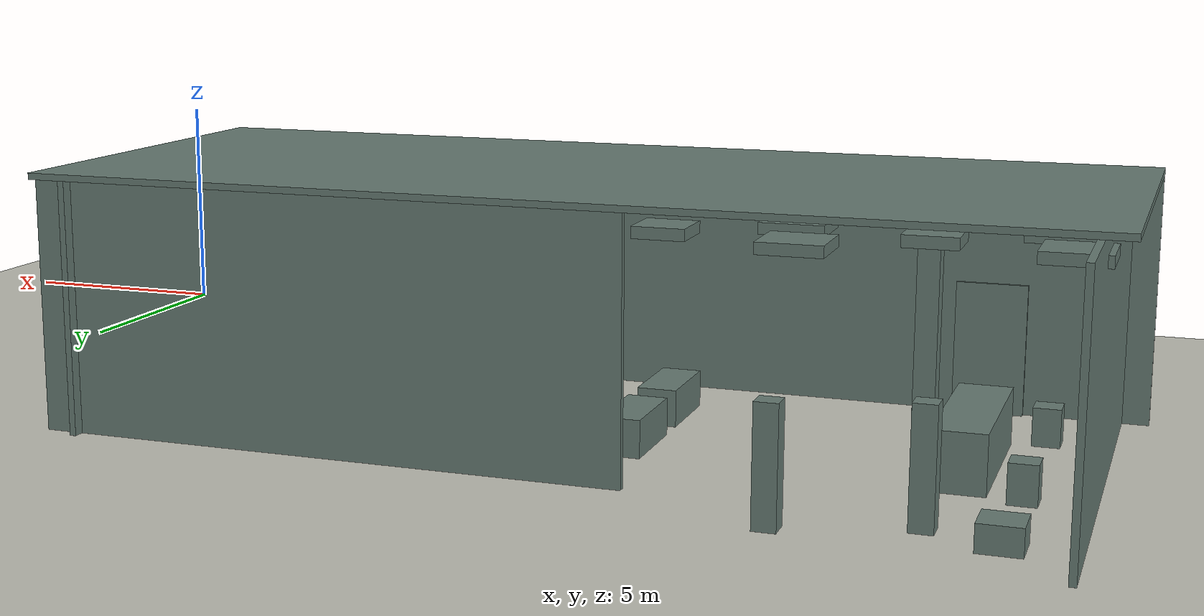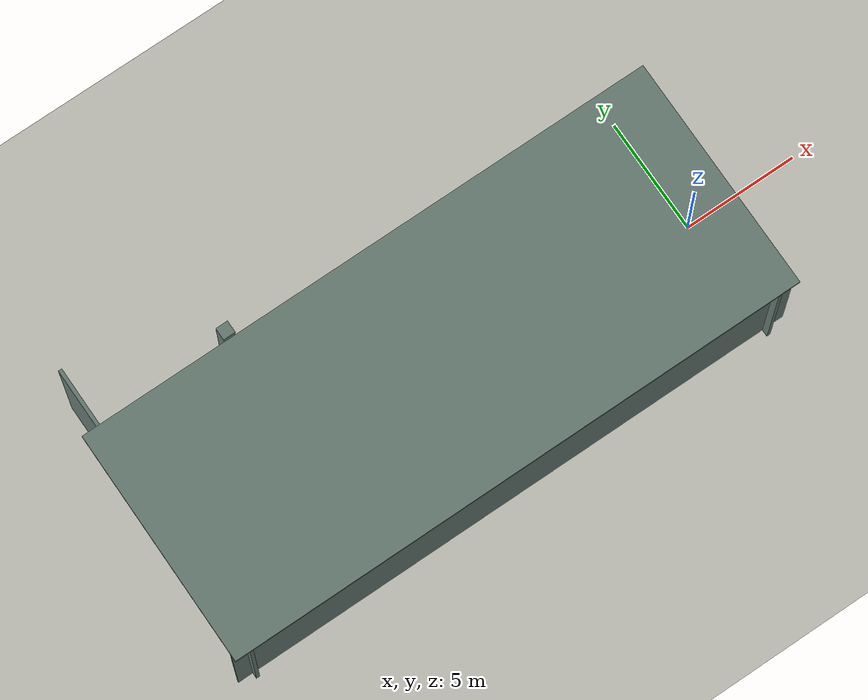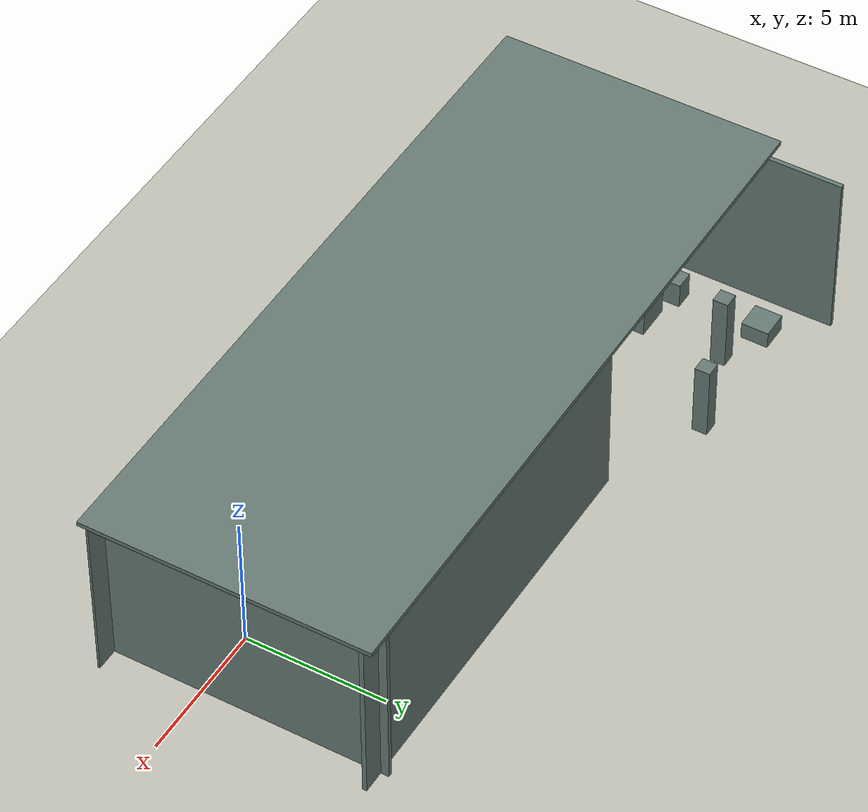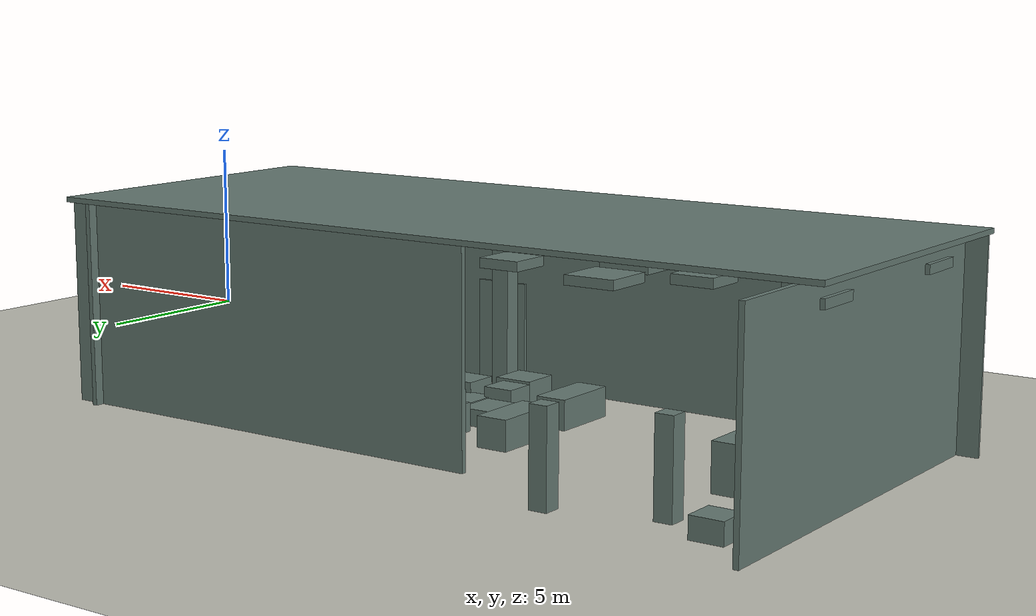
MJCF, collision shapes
<mujoco model="g1_12dof">
  <compiler angle="radian" meshdir="/home/hchen/Documents/astraBlenderTest/world_model_blog/runtime/unitree_rl_gym/resources/robots/g1_description/meshes" />

  <statistic meansize="0.144785" extent="1.23314" center="0.025392 2.0634e-05 -0.245975" />
  <default>
    <joint damping="0.001" armature="0.01" frictionloss="0.1" />
  </default>

  <asset>
    <mesh name="pelvis" file="pelvis.STL" />
    <mesh name="pelvis_contour_link" file="pelvis_contour_link.STL" />
    <mesh name="left_hip_pitch_link" file="left_hip_pitch_link.STL" />
    <mesh name="left_hip_roll_link" file="left_hip_roll_link.STL" />
    <mesh name="left_hip_yaw_link" file="left_hip_yaw_link.STL" />
    <mesh name="left_knee_link" file="left_knee_link.STL" />
    <mesh name="left_ankle_pitch_link" file="left_ankle_pitch_link.STL" />
    <mesh name="left_ankle_roll_link" file="left_ankle_roll_link.STL" />
    <mesh name="right_hip_pitch_link" file="right_hip_pitch_link.STL" />
    <mesh name="right_hip_roll_link" file="right_hip_roll_link.STL" />
    <mesh name="right_hip_yaw_link" file="right_hip_yaw_link.STL" />
    <mesh name="right_knee_link" file="right_knee_link.STL" />
    <mesh name="right_ankle_pitch_link" file="right_ankle_pitch_link.STL" />
    <mesh name="right_ankle_roll_link" file="right_ankle_roll_link.STL" />
    <mesh name="torso_link_23dof_rev_1_0" file="torso_link_23dof_rev_1_0.STL" />
    <mesh name="logo_link" file="logo_link.STL" />
    <mesh name="head_link" file="head_link.STL" />
    <mesh name="left_shoulder_pitch_link" file="left_shoulder_pitch_link.STL" />
    <mesh name="left_shoulder_roll_link" file="left_shoulder_roll_link.STL" />
    <mesh name="left_shoulder_yaw_link" file="left_shoulder_yaw_link.STL" />
    <mesh name="left_elbow_link" file="left_elbow_link.STL" />
    <mesh name="left_wrist_roll_rubber_hand" file="left_wrist_roll_rubber_hand.STL" />
    <mesh name="right_shoulder_pitch_link" file="right_shoulder_pitch_link.STL" />
    <mesh name="right_shoulder_roll_link" file="right_shoulder_roll_link.STL" />
    <mesh name="right_shoulder_yaw_link" file="right_shoulder_yaw_link.STL" />
    <mesh name="right_elbow_link" file="right_elbow_link.STL" />
    <mesh name="right_wrist_roll_rubber_hand" file="right_wrist_roll_rubber_hand.STL" />
  </asset>

  <worldbody>
    <body name="pelvis" pos="0 0 0.793">
      <inertial pos="0.0144905 0.000151462 0.144068" quat="0.999881 -0.000505543 -0.0154276 0.000328408" mass="17.7349" diaginertia="0.552723 0.454092 0.211762" />
      <joint name="floating_base_joint" type="free" limited="false" actuatorfrclimited="false" />
      <geom type="mesh" contype="0" conaffinity="0" group="1" density="0" rgba="0.2 0.2 0.2 1" mesh="pelvis" />
      <geom type="mesh" contype="0" conaffinity="0" group="1" density="0" rgba="0.7 0.7 0.7 1" mesh="pelvis_contour_link" />
      <geom type="mesh" rgba="0.7 0.7 0.7 1" mesh="pelvis_contour_link" />
      <geom type="mesh" contype="0" conaffinity="0" group="1" density="0" rgba="0.7 0.7 0.7 1" mesh="torso_link_23dof_rev_1_0" />
      <geom type="mesh" rgba="0.7 0.7 0.7 1" mesh="torso_link_23dof_rev_1_0" />
      <geom type="mesh" contype="0" conaffinity="0" group="1" density="0" rgba="0.2 0.2 0.2 1" mesh="logo_link" />
      <geom type="mesh" rgba="0.2 0.2 0.2 1" mesh="logo_link" />
      <geom type="mesh" contype="0" conaffinity="0" group="1" density="0" rgba="0.2 0.2 0.2 1" mesh="head_link" />
      <geom type="mesh" rgba="0.2 0.2 0.2 1" mesh="head_link" />
      <geom pos="-7.2e-06 0.10022 0.29178" quat="0.990264 0.139201 1.38722e-05 -9.86868e-05" type="mesh" contype="0" conaffinity="0" group="1" density="0" rgba="0.7 0.7 0.7 1" mesh="left_shoulder_pitch_link" />
      <geom size="0.03 0.025" pos="7.72569e-07 0.141427 0.293195" quat="0.700213 0.0985001 0.700232 0.0983605" type="cylinder" rgba="0.7 0.7 0.7 1" />
      <geom pos="3.73942e-07 0.14056 0.288961" quat="1 3.00026e-05 2.74716e-05 -9.57958e-05" type="mesh" contype="0" conaffinity="0" group="1" density="0" rgba="0.7 0.7 0.7 1" mesh="left_shoulder_roll_link" />
      <geom size="0.03 0.015" pos="-0.00400139 0.146564 0.235962" quat="1 3.00026e-05 2.74716e-05 -9.57958e-05" type="cylinder" rgba="0.7 0.7 0.7 1" />
      <geom pos="-4.10007e-06 0.146807 0.185762" quat="1 3.00026e-05 2.74716e-05 -9.57958e-05" type="mesh" contype="0" conaffinity="0" group="1" density="0" rgba="0.7 0.7 0.7 1" mesh="left_shoulder_yaw_link" />
      <geom pos="-4.10007e-06 0.146807 0.185762" quat="1 3.00026e-05 2.74716e-05 -9.57958e-05" type="mesh" rgba="0.7 0.7 0.7 1" mesh="left_shoulder_yaw_link" />
      <geom pos="0.0157745 0.146808 0.105243" quat="1 3.00026e-05 2.74716e-05 -9.57958e-05" type="mesh" contype="0" conaffinity="0" group="1" density="0" rgba="0.7 0.7 0.7 1" mesh="left_elbow_link" />
      <geom pos="0.0157745 0.146808 0.105243" quat="1 3.00026e-05 2.74716e-05 -9.57958e-05" type="mesh" rgba="0.7 0.7 0.7 1" mesh="left_elbow_link" />
      <geom pos="0.115774 0.148678 0.0952374" quat="1 3.00026e-05 2.74716e-05 -9.57958e-05" type="mesh" contype="0" conaffinity="0" group="1" density="0" rgba="0.7 0.7 0.7 1" mesh="left_wrist_roll_rubber_hand" />
      <geom pos="0.115774 0.148678 0.0952374" quat="1 3.00026e-05 2.74716e-05 -9.57958e-05" type="mesh" rgba="0.7 0.7 0.7 1" mesh="left_wrist_roll_rubber_hand" />
      <geom pos="-7.2e-06 -0.10021 0.29178" quat="0.990264 -0.139201 1.38722e-05 9.86868e-05" type="mesh" contype="0" conaffinity="0" group="1" density="0" rgba="0.7 0.7 0.7 1" mesh="right_shoulder_pitch_link" />
      <geom size="0.03 0.025" pos="7.72569e-07 -0.141417 0.293195" quat="0.700213 -0.0985001 0.700232 -0.0983605" type="cylinder" rgba="0.7 0.7 0.7 1" />
      <geom pos="3.73942e-07 -0.14055 0.288961" quat="1 -3.00026e-05 2.74716e-05 9.57958e-05" type="mesh" contype="0" conaffinity="0" group="1" density="0" rgba="0.7 0.7 0.7 1" mesh="right_shoulder_roll_link" />
      <geom size="0.03 0.015" pos="-0.00400139 -0.146554 0.235962" quat="1 -3.00026e-05 2.74716e-05 9.57958e-05" type="cylinder" rgba="0.7 0.7 0.7 1" />
      <geom pos="-4.10007e-06 -0.146797 0.185762" quat="1 -3.00026e-05 2.74716e-05 9.57958e-05" type="mesh" contype="0" conaffinity="0" group="1" density="0" rgba="0.7 0.7 0.7 1" mesh="right_shoulder_yaw_link" />
      <geom pos="-4.10007e-06 -0.146797 0.185762" quat="1 -3.00026e-05 2.74716e-05 9.57958e-05" type="mesh" rgba="0.7 0.7 0.7 1" mesh="right_shoulder_yaw_link" />
      <geom pos="0.0157745 -0.146798 0.105243" quat="1 -3.00026e-05 2.74716e-05 9.57958e-05" type="mesh" contype="0" conaffinity="0" group="1" density="0" rgba="0.7 0.7 0.7 1" mesh="right_elbow_link" />
      <geom pos="0.0157745 -0.146798 0.105243" quat="1 -3.00026e-05 2.74716e-05 9.57958e-05" type="mesh" rgba="0.7 0.7 0.7 1" mesh="right_elbow_link" />
      <geom pos="0.115774 -0.148668 0.0952374" quat="1 -3.00026e-05 2.74716e-05 9.57958e-05" type="mesh" contype="0" conaffinity="0" group="1" density="0" rgba="0.7 0.7 0.7 1" mesh="right_wrist_roll_rubber_hand" />
      <geom pos="0.115774 -0.148668 0.0952374" quat="1 -3.00026e-05 2.74716e-05 9.57958e-05" type="mesh" rgba="0.7 0.7 0.7 1" mesh="right_wrist_roll_rubber_hand" />
      <body name="left_hip_pitch_link" pos="0 0.064452 -0.1027">
        <inertial pos="0.002741 0.047791 -0.02606" quat="0.954862 0.293964 0.0302556 0.030122" mass="1.35" diaginertia="0.00181517 0.00153422 0.00116212" />
        <joint name="left_hip_pitch_joint" pos="0 0 0" axis="0 1 0" range="-2.5307 2.8798" actuatorfrcrange="-88 88" />
        <geom type="mesh" contype="0" conaffinity="0" group="1" density="0" rgba="0.2 0.2 0.2 1" mesh="left_hip_pitch_link" />
        <geom type="mesh" rgba="0.2 0.2 0.2 1" mesh="left_hip_pitch_link" />
        <body name="left_hip_roll_link" pos="0 0.052 -0.030465" quat="0.996179 0 -0.0873386 0">
          <inertial pos="0.029812 -0.001045 -0.087934" quat="0.977808 -1.97119e-05 0.205576 -0.0403793" mass="1.52" diaginertia="0.00254986 0.00241169 0.00148755" />
          <joint name="left_hip_roll_joint" pos="0 0 0" axis="1 0 0" range="-0.5236 2.9671" actuatorfrcrange="-139 139" />
          <geom type="mesh" contype="0" conaffinity="0" group="1" density="0" rgba="0.7 0.7 0.7 1" mesh="left_hip_roll_link" />
          <geom type="mesh" rgba="0.7 0.7 0.7 1" mesh="left_hip_roll_link" />
          <body name="left_hip_yaw_link" pos="0.025001 0 -0.12412">
            <inertial pos="-0.057709 -0.010981 -0.15078" quat="0.600598 0.15832 0.223482 0.751181" mass="1.702" diaginertia="0.00776166 0.00717575 0.00160139" />
            <joint name="left_hip_yaw_joint" pos="0 0 0" axis="0 0 1" range="-2.7576 2.7576" actuatorfrcrange="-88 88" />
            <geom type="mesh" contype="0" conaffinity="0" group="1" density="0" rgba="0.7 0.7 0.7 1" mesh="left_hip_yaw_link" />
            <geom type="mesh" rgba="0.7 0.7 0.7 1" mesh="left_hip_yaw_link" />
            <body name="left_knee_link" pos="-0.078273 0.0021489 -0.17734" quat="0.996179 0 0.0873386 0">
              <inertial pos="0.005457 0.003964 -0.12074" quat="0.923418 -0.0327699 0.0158246 0.382067" mass="1.932" diaginertia="0.0113804 0.0112778 0.00146458" />
              <joint name="left_knee_joint" pos="0 0 0" axis="0 1 0" range="-0.087267 2.8798" actuatorfrcrange="-139 139" />
              <geom type="mesh" contype="0" conaffinity="0" group="1" density="0" rgba="0.7 0.7 0.7 1" mesh="left_knee_link" />
              <geom type="mesh" rgba="0.7 0.7 0.7 1" mesh="left_knee_link" />
              <body name="left_ankle_pitch_link" pos="0 -9.4445e-05 -0.30001">
                <inertial pos="-0.007269 0 0.011137" quat="0.603053 0.369225 0.369225 0.603053" mass="0.074" diaginertia="1.89e-05 1.40805e-05 6.9195e-06" />
                <joint name="left_ankle_pitch_joint" pos="0 0 0" axis="0 1 0" range="-0.87267 0.5236" actuatorfrcrange="-50 50" />
                <geom type="mesh" contype="0" conaffinity="0" group="1" density="0" rgba="0.7 0.7 0.7 1" mesh="left_ankle_pitch_link" />
                <geom type="mesh" rgba="0.7 0.7 0.7 1" mesh="left_ankle_pitch_link" />
                <body name="left_ankle_roll_link" pos="0 0 -0.017558">
                  <inertial pos="0.026505 0 -0.016425" quat="-0.000481092 0.728482 -0.000618967 0.685065" mass="0.608" diaginertia="0.00167218 0.0016161 0.000217621" />
                  <joint name="left_ankle_roll_joint" pos="0 0 0" axis="1 0 0" range="-0.2618 0.2618" actuatorfrcrange="-50 50" />
                  <geom type="mesh" contype="0" conaffinity="0" group="1" density="0" rgba="0.2 0.2 0.2 1" mesh="left_ankle_roll_link" />
                  <geom size="0.005" pos="-0.05 0.025 -0.03" rgba="0.2 0.2 0.2 1" />
                  <geom size="0.005" pos="-0.05 -0.025 -0.03" rgba="0.2 0.2 0.2 1" />
                  <geom size="0.005" pos="0.12 0.03 -0.03" rgba="0.2 0.2 0.2 1" />
                  <geom size="0.005" pos="0.12 -0.03 -0.03" rgba="0.2 0.2 0.2 1" />
                </body>
              </body>
            </body>
          </body>
        </body>
      </body>
      <body name="right_hip_pitch_link" pos="0 -0.064452 -0.1027">
        <inertial pos="0.002741 -0.047791 -0.02606" quat="0.954862 -0.293964 0.0302556 -0.030122" mass="1.35" diaginertia="0.00181517 0.00153422 0.00116212" />
        <joint name="right_hip_pitch_joint" pos="0 0 0" axis="0 1 0" range="-2.5307 2.8798" actuatorfrcrange="-88 88" />
        <geom type="mesh" contype="0" conaffinity="0" group="1" density="0" rgba="0.2 0.2 0.2 1" mesh="right_hip_pitch_link" />
        <geom type="mesh" rgba="0.2 0.2 0.2 1" mesh="right_hip_pitch_link" />
        <body name="right_hip_roll_link" pos="0 -0.052 -0.030465" quat="0.996179 0 -0.0873386 0">
          <inertial pos="0.029812 0.001045 -0.087934" quat="0.977808 1.97119e-05 0.205576 0.0403793" mass="1.52" diaginertia="0.00254986 0.00241169 0.00148755" />
          <joint name="right_hip_roll_joint" pos="0 0 0" axis="1 0 0" range="-2.9671 0.5236" actuatorfrcrange="-139 139" />
          <geom type="mesh" contype="0" conaffinity="0" group="1" density="0" rgba="0.7 0.7 0.7 1" mesh="right_hip_roll_link" />
          <geom type="mesh" rgba="0.7 0.7 0.7 1" mesh="right_hip_roll_link" />
          <body name="right_hip_yaw_link" pos="0.025001 0 -0.12412">
            <inertial pos="-0.057709 0.010981 -0.15078" quat="0.751181 0.223482 0.15832 0.600598" mass="1.702" diaginertia="0.00776166 0.00717575 0.00160139" />
            <joint name="right_hip_yaw_joint" pos="0 0 0" axis="0 0 1" range="-2.7576 2.7576" actuatorfrcrange="-88 88" />
            <geom type="mesh" contype="0" conaffinity="0" group="1" density="0" rgba="0.7 0.7 0.7 1" mesh="right_hip_yaw_link" />
            <geom type="mesh" rgba="0.7 0.7 0.7 1" mesh="right_hip_yaw_link" />
            <body name="right_knee_link" pos="-0.078273 -0.0021489 -0.17734" quat="0.996179 0 0.0873386 0">
              <inertial pos="0.005457 -0.003964 -0.12074" quat="0.923439 0.0345276 0.0116333 -0.382012" mass="1.932" diaginertia="0.011374 0.0112843 0.00146452" />
              <joint name="right_knee_joint" pos="0 0 0" axis="0 1 0" range="-0.087267 2.8798" actuatorfrcrange="-139 139" />
              <geom type="mesh" contype="0" conaffinity="0" group="1" density="0" rgba="0.7 0.7 0.7 1" mesh="right_knee_link" />
              <geom type="mesh" rgba="0.7 0.7 0.7 1" mesh="right_knee_link" />
              <body name="right_ankle_pitch_link" pos="0 9.4445e-05 -0.30001">
                <inertial pos="-0.007269 0 0.011137" quat="0.603053 0.369225 0.369225 0.603053" mass="0.074" diaginertia="1.89e-05 1.40805e-05 6.9195e-06" />
                <joint name="right_ankle_pitch_joint" pos="0 0 0" axis="0 1 0" range="-0.87267 0.5236" actuatorfrcrange="-50 50" />
                <geom type="mesh" contype="0" conaffinity="0" group="1" density="0" rgba="0.7 0.7 0.7 1" mesh="right_ankle_pitch_link" />
                <geom type="mesh" rgba="0.7 0.7 0.7 1" mesh="right_ankle_pitch_link" />
                <body name="right_ankle_roll_link" pos="0 0 -0.017558">
                  <inertial pos="0.026505 0 -0.016425" quat="0.000481092 0.728482 0.000618967 0.685065" mass="0.608" diaginertia="0.00167218 0.0016161 0.000217621" />
                  <joint name="right_ankle_roll_joint" pos="0 0 0" axis="1 0 0" range="-0.2618 0.2618" actuatorfrcrange="-50 50" />
                  <geom type="mesh" contype="0" conaffinity="0" group="1" density="0" rgba="0.2 0.2 0.2 1" mesh="right_ankle_roll_link" />
                  <geom size="0.005" pos="-0.05 0.025 -0.03" rgba="0.2 0.2 0.2 1" />
                  <geom size="0.005" pos="-0.05 -0.025 -0.03" rgba="0.2 0.2 0.2 1" />
                  <geom size="0.005" pos="0.12 0.03 -0.03" rgba="0.2 0.2 0.2 1" />
                  <geom size="0.005" pos="0.12 -0.03 -0.03" rgba="0.2 0.2 0.2 1" />
                </body>
              </body>
            </body>
          </body>
        </body>
      </body>
    </body>
  <light pos="0 0 12" dir="0 0 -1" directional="true" diffuse="0.8 0.8 0.8" /><geom name="world_floor" type="plane" pos="0 0 -2.5382169319971153" size="0 0 .05" rgba=".75 .75 .71 1" friction=".9 .02 .002" /><geom name="world_obstacle_0" type="box" pos="-11.4 0.2999999999999998 3.8697291394767395" size="12.9 5.2 0.08000000000000007" rgba=".40 .48 .45 1" friction=".8 .02 .002" /><geom name="world_obstacle_1" type="box" pos="-11.4 -4.55 0.6257561037398123" size="12.9 0.040000000000000036 3.1639730357369276" rgba=".40 .48 .45 1" friction=".8 .02 .002" /><geom name="world_obstacle_2" type="box" pos="-6.0 5.13 0.6257561037398123" size="7.5 0.08000000000000007 3.1639730357369276" rgba=".40 .48 .45 1" friction=".8 .02 .002" /><geom name="world_obstacle_3" type="box" pos="-23.56 1.6500000000000004 0.6257561037398123" size="0.0799999999999983 6.5 3.1639730357369276" rgba=".40 .48 .45 1" friction=".8 .02 .002" /><geom name="world_obstacle_4" type="box" pos="0.6 0.2999999999999998 0.6257561037398123" size="0.07999999999999996 5.2 3.1639730357369276" rgba=".40 .48 .45 1" friction=".8 .02 .002" /><geom name="world_obstacle_5" type="box" pos="-20.3 -4.4 -0.8382169319971153" size="0.8999999999999986 0.04999999999999982 1.7" rgba=".40 .48 .45 1" friction=".8 .02 .002" /><geom name="world_obstacle_6" type="box" pos="-8.0 -4.4 -0.8382169319971153" size="0.9000000000000004 0.04999999999999982 1.7" rgba=".40 .48 .45 1" friction=".8 .02 .002" /><geom name="world_obstacle_7" type="box" pos="-18.8 -3.83 0.6257561037398123" size="0.28999999999999915 0.29000000000000004 3.1639730357369276" rgba=".40 .48 .45 1" friction=".8 .02 .002" /><geom name="world_obstacle_8" type="box" pos="-8.5 -3.83 0.6257561037398123" size="0.28999999999999915 0.29000000000000004 3.1639730357369276" rgba=".40 .48 .45 1" friction=".8 .02 .002" /><geom name="world_obstacle_9" type="box" pos="-20.6 0.7000000000000001 -1.8182169319971153" size="0.6499999999999986 2.25 0.72" rgba=".40 .48 .45 1" friction=".8 .02 .002" /><geom name="world_obstacle_10" type="box" pos="-12.65 -1.4500000000000002 -2.0682169319971155" size="0.5 1.125 0.46999999999999986" rgba=".40 .48 .45 1" friction=".8 .02 .002" /><geom name="world_obstacle_11" type="box" pos="-12.65 1.5499999999999998 -2.0682169319971155" size="0.5 1.125 0.46999999999999986" rgba=".40 .48 .45 1" friction=".8 .02 .002" /><geom name="world_obstacle_12" type="box" pos="-9.35 -0.09999999999999998 -2.258216931997115" size="0.8000000000000007 0.8 0.28000000000000014" rgba=".40 .48 .45 1" friction=".8 .02 .002" /><geom name="world_obstacle_13" type="box" pos="-8.8 -1.35 -2.0982169319971153" size="0.5600000000000005 0.56 0.43999999999999995" rgba=".40 .48 .45 1" friction=".8 .02 .002" /><geom name="world_obstacle_14" type="box" pos="-10.492090321105152 -1.1307727565290244 -2.0982169319971153" size="0.5 0.5 0.43999999999999995" rgba=".40 .48 .45 1" friction=".8 .02 .002" /><geom name="world_obstacle_15" type="box" pos="-10.64893281032411 0.08918643397313242 -2.273216931997115" size="0.6999999999999993 0.7 0.2650000000000001" rgba=".40 .48 .45 1" friction=".8 .02 .002" /><geom name="world_obstacle_16" type="box" pos="-9.722860186297781 0.9361896777856887 -2.273216931997115" size="0.5250000000000004 0.525 0.2650000000000001" rgba=".40 .48 .45 1" friction=".8 .02 .002" /><geom name="world_obstacle_17" type="box" pos="-10.336116682272957 1.8553966447702026 -2.0982169319971153" size="0.5500000000000007 0.55 0.43999999999999995" rgba=".40 .48 .45 1" friction=".8 .02 .002" /><geom name="world_obstacle_18" type="box" pos="-3.59 0.5799999999999998 -2.258216931997115" size="0.7999999999999998 0.8 0.28000000000000014" rgba=".40 .48 .45 1" friction=".8 .02 .002" /><geom name="world_obstacle_19" type="box" pos="-4.209516855517914 1.6993531330747065 -2.2632169319971154" size="0.4900000000000002 0.49 0.2749999999999999" rgba=".40 .48 .45 1" friction=".8 .02 .002" /><geom name="world_obstacle_20" type="box" pos="-3.1643621592771947 1.9285946234859532 -2.088216931997115" size="0.5499999999999998 0.55 0.45000000000000007" rgba=".40 .48 .45 1" friction=".8 .02 .002" /><geom name="world_obstacle_21" type="box" pos="-2.096120985204892 1.5920522434393405 -2.088216931997115" size="0.54 0.5400000000000001 0.45000000000000007" rgba=".40 .48 .45 1" friction=".8 .02 .002" /><geom name="world_obstacle_22" type="box" pos="-9.96 -2.82 -2.1382169319971154" size="0.625 0.625 0.3999999999999999" rgba=".40 .48 .45 1" friction=".8 .02 .002" /><geom name="world_obstacle_23" type="box" pos="-6.9 4.16 -2.0182169319971153" size="0.40000000000000036 0.40000000000000013 0.52" rgba=".40 .48 .45 1" friction=".8 .02 .002" /><geom name="world_obstacle_24" type="box" pos="-1.15 2.3 -1.8882169319971154" size="0.31000000000000005 0.3500000000000001 0.6499999999999999" rgba=".40 .48 .45 1" friction=".8 .02 .002" /><geom name="world_obstacle_25" type="box" pos="-22.06 -1.95 -2.0582169319971153" size="0.33999999999999986 0.3400000000000001 0.48" rgba=".40 .48 .45 1" friction=".8 .02 .002" /><geom name="world_obstacle_26" type="box" pos="-22.06 3.0 -2.0582169319971153" size="0.33999999999999986 0.33999999999999986 0.48" rgba=".40 .48 .45 1" friction=".8 .02 .002" /><geom name="world_obstacle_27" type="box" pos="-22.0 6.3 -2.2182169319971154" size="0.5 0.5 0.31999999999999995" rgba=".40 .48 .45 1" friction=".8 .02 .002" /><geom name="world_obstacle_28" type="box" pos="-1.4500000000000002 1.0 3.3097291394767394" size="0.6250000000000001 0.625 0.14000000000000012" rgba=".40 .48 .45 1" friction=".8 .02 .002" /><geom name="world_obstacle_29" type="box" pos="-2.0 3.5999999999999996 3.3097291394767394" size="0.625 0.6249999999999998 0.14000000000000012" rgba=".40 .48 .45 1" friction=".8 .02 .002" /><geom name="world_obstacle_30" type="box" pos="-5.0 -2.6 3.1497291394767393" size="0.7750000000000004 0.7749999999999999 0.14000000000000012" rgba=".40 .48 .45 1" friction=".8 .02 .002" /><geom name="world_obstacle_31" type="box" pos="-4.45 1.0 3.1497291394767393" size="0.7750000000000001 0.7749999999999999 0.14000000000000012" rgba=".40 .48 .45 1" friction=".8 .02 .002" /><geom name="world_obstacle_32" type="box" pos="-5.0 3.6 3.1497291394767393" size="0.7750000000000004 0.7749999999999999 0.14000000000000012" rgba=".40 .48 .45 1" friction=".8 .02 .002" /><geom name="world_obstacle_33" type="box" pos="-8.0 -2.6 2.9897291394767396" size="0.625 0.625 0.14000000000000012" rgba=".40 .48 .45 1" friction=".8 .02 .002" /><geom name="world_obstacle_34" type="box" pos="-7.449999999999999 1.0 2.9897291394767396" size="0.6249999999999996 0.625 0.14000000000000012" rgba=".40 .48 .45 1" friction=".8 .02 .002" /><geom name="world_obstacle_35" type="box" pos="-8.0 3.5999999999999996 2.9897291394767396" size="0.625 0.6249999999999998 0.14000000000000012" rgba=".40 .48 .45 1" friction=".8 .02 .002" /><geom name="world_obstacle_36" type="box" pos="-11.0 -2.6 3.3097291394767394" size="0.7750000000000004 0.7749999999999999 0.14000000000000012" rgba=".40 .48 .45 1" friction=".8 .02 .002" /><geom name="world_obstacle_37" type="box" pos="-10.45 1.0 3.3097291394767394" size="0.7750000000000004 0.7749999999999999 0.14000000000000012" rgba=".40 .48 .45 1" friction=".8 .02 .002" /><geom name="world_obstacle_38" type="box" pos="-14.0 -2.6 3.1497291394767393" size="0.625 0.625 0.14000000000000012" rgba=".40 .48 .45 1" friction=".8 .02 .002" /><geom name="world_obstacle_39" type="box" pos="-14.0 3.5999999999999996 3.1497291394767393" size="0.625 0.6249999999999998 0.14000000000000012" rgba=".40 .48 .45 1" friction=".8 .02 .002" /><geom name="world_obstacle_40" type="box" pos="-16.45 1.0 2.9897291394767396" size="0.7749999999999995 0.7749999999999999 0.14000000000000012" rgba=".40 .48 .45 1" friction=".8 .02 .002" /><geom name="world_obstacle_41" type="box" pos="-17.0 3.6 2.9897291394767396" size="0.7749999999999986 0.7749999999999999 0.14000000000000012" rgba=".40 .48 .45 1" friction=".8 .02 .002" /><geom name="world_obstacle_42" type="box" pos="-20.0 -2.6 3.3097291394767394" size="0.625 0.625 0.14000000000000012" rgba=".40 .48 .45 1" friction=".8 .02 .002" /><geom name="world_obstacle_43" type="box" pos="-19.45 1.0 3.3097291394767394" size="0.625 0.625 0.14000000000000012" rgba=".40 .48 .45 1" friction=".8 .02 .002" /><geom name="world_obstacle_44" type="box" pos="-20.0 3.5999999999999996 3.3097291394767394" size="0.625 0.6249999999999998 0.14000000000000012" rgba=".40 .48 .45 1" friction=".8 .02 .002" /><geom name="world_obstacle_45" type="box" pos="-23.0 -2.6 3.1497291394767393" size="0.7749999999999986 0.7749999999999999 0.14000000000000012" rgba=".40 .48 .45 1" friction=".8 .02 .002" /><geom name="world_obstacle_46" type="box" pos="-22.45 1.0 3.1497291394767393" size="0.7749999999999986 0.7749999999999999 0.14000000000000012" rgba=".40 .48 .45 1" friction=".8 .02 .002" /><geom name="world_obstacle_47" type="box" pos="-23.0 3.6 3.1497291394767393" size="0.7749999999999986 0.7749999999999999 0.14000000000000012" rgba=".40 .48 .45 1" friction=".8 .02 .002" /><geom name="world_obstacle_48" type="box" pos="-20.3 5.7 -1.1382169319971154" size="0.2749999999999986 0.27500000000000036 1.4" rgba=".40 .48 .45 1" friction=".8 .02 .002" /><geom name="world_obstacle_49" type="box" pos="-17.2 6.7 -1.1382169319971154" size="0.2749999999999986 0.27500000000000036 1.4" rgba=".40 .48 .45 1" friction=".8 .02 .002" /><geom name="world_obstacle_50" type="box" pos="-9.35 -0.1 -1.8832169319971153" size="0.16999999999999993 0.17 0.10000000000000009" rgba=".40 .48 .45 1" friction=".8 .02 .002" /></worldbody>
  <actuator>
    <motor name="left_hip_pitch_joint" joint="left_hip_pitch_joint" />
    <motor name="left_hip_roll_joint" joint="left_hip_roll_joint" />
    <motor name="left_hip_yaw_joint" joint="left_hip_yaw_joint" />
    <motor name="left_knee_joint" joint="left_knee_joint" />
    <motor name="left_ankle_pitch_joint" joint="left_ankle_pitch_joint" />
    <motor name="left_ankle_roll_joint" joint="left_ankle_roll_joint" />
    <motor name="right_hip_pitch_joint" joint="right_hip_pitch_joint" />
    <motor name="right_hip_roll_joint" joint="right_hip_roll_joint" />
    <motor name="right_hip_yaw_joint" joint="right_hip_yaw_joint" />
    <motor name="right_knee_joint" joint="right_knee_joint" />
    <motor name="right_ankle_pitch_joint" joint="right_ankle_pitch_joint" />
    <motor name="right_ankle_roll_joint" joint="right_ankle_roll_joint" />
  </actuator>
<visual><global offwidth="960" offheight="720" /></visual></mujoco>
